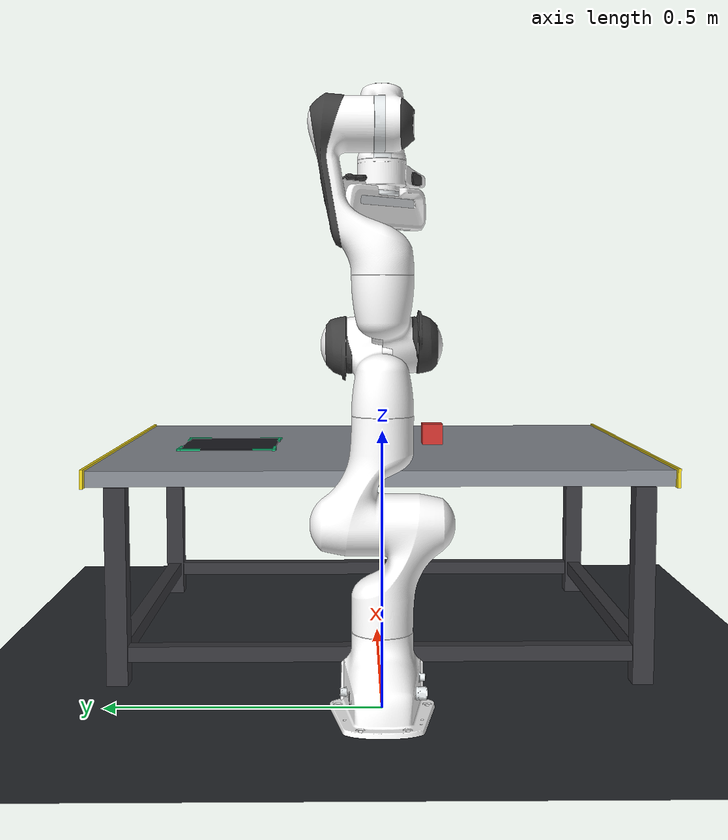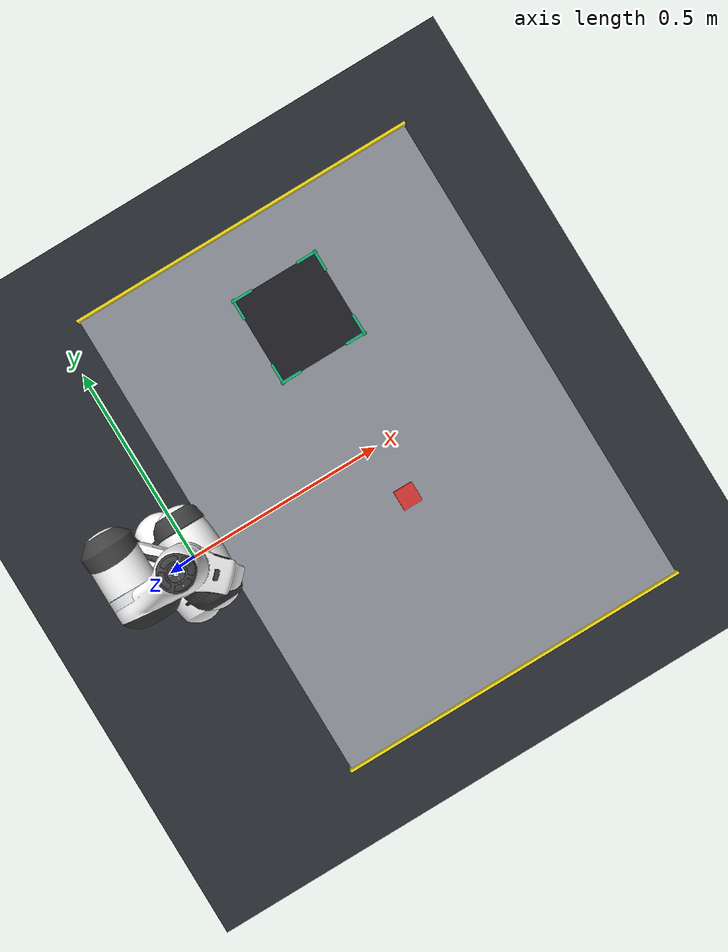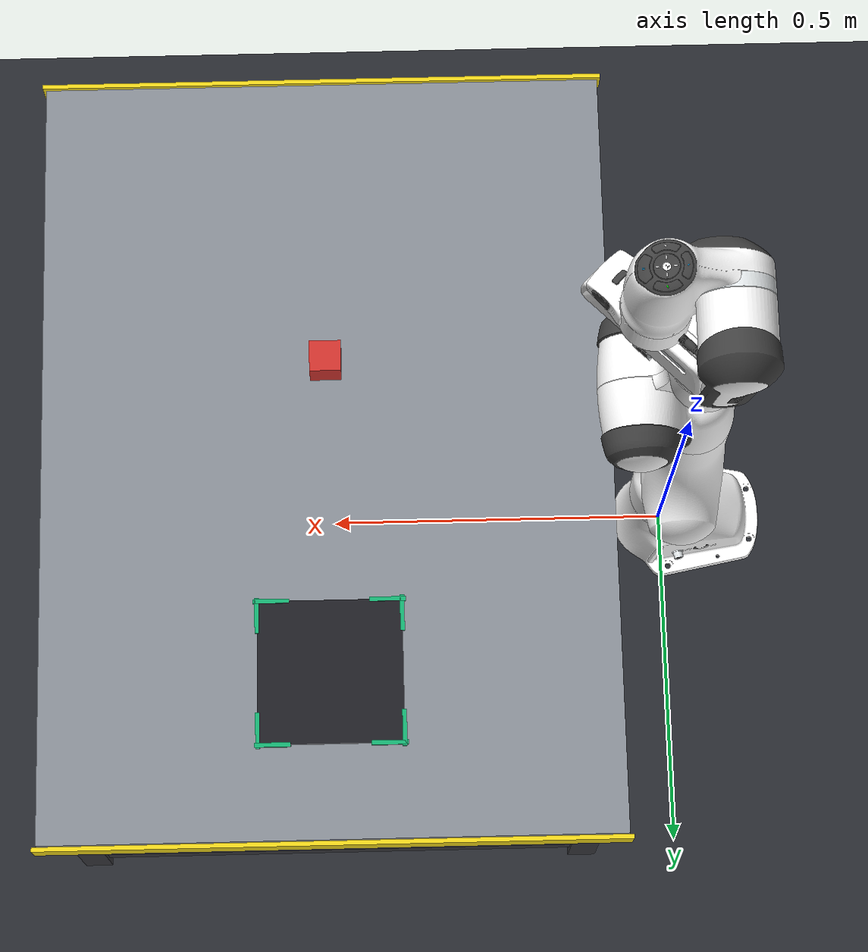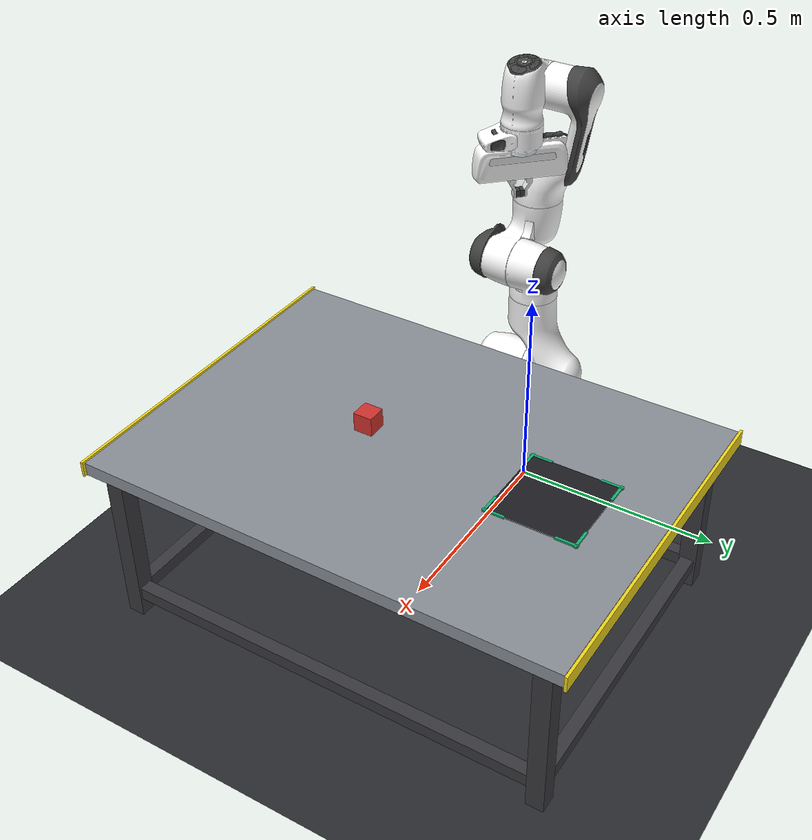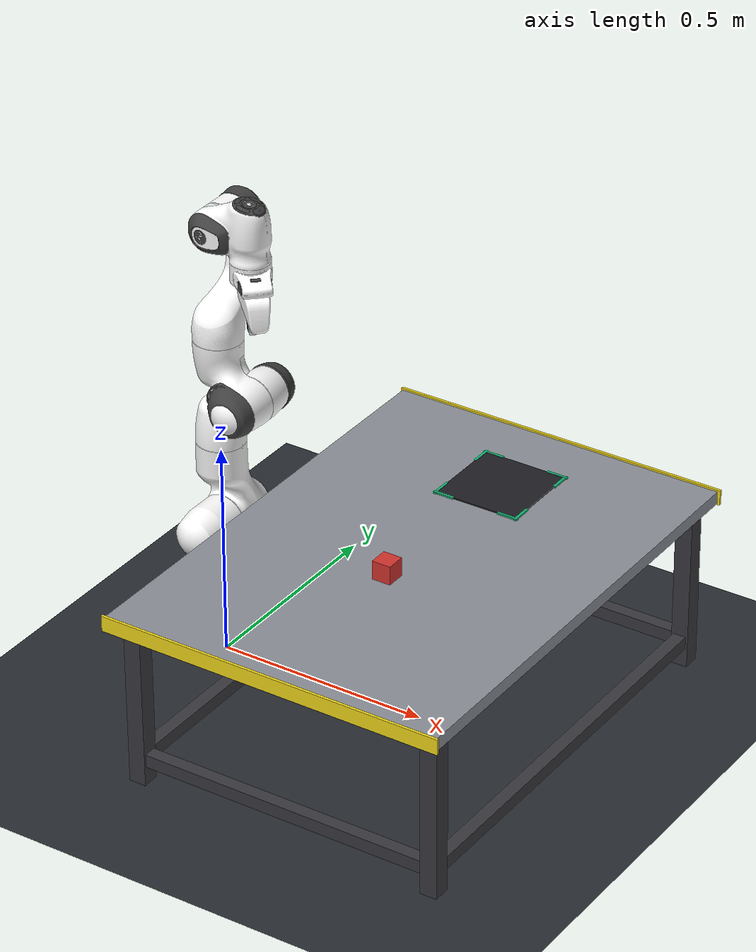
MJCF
<!--
  Grasp Integrity Predictor — Lab Workcell
  Official Franka Emika Panda (MuJoCo Menagerie).
  Module C demo / case study.
-->
<mujoco model="grasp_lab">
  <include file="panda.xml"/>

  <option timestep="0.002" gravity="0 0 -9.81"
          cone="elliptic" impratio="10"/>

  <statistic center="0.35 0 0.40" extent="1.2"/>

  <visual>
    <headlight diffuse="0.42 0.42 0.45" ambient="0.28 0.28 0.30" specular="0.08 0.08 0.08"/>
    <rgba haze="0.04 0.05 0.08 1"/>
    <quality shadowsize="4096" offsamples="8"/>
    <map znear="0.005" zfar="50" force="0.05"/>
    <global azimuth="150" elevation="-25"/>
  </visual>

  <asset>
    <texture name="skybox" type="skybox" builtin="gradient"
             rgb1="0.10 0.11 0.14" rgb2="0.04 0.05 0.07"
             width="512" height="3072"/>

    <material name="floor_mat" specular="0.05" shininess="0.05"
              reflectance="0.02" rgba="0.16 0.17 0.19 1"/>

    <texture name="alu_tex" type="2d" builtin="gradient"
             rgb1="0.58 0.60 0.63" rgb2="0.50 0.52 0.55"
             width="256" height="16"/>
    <material name="alu_mat" texture="alu_tex" texrepeat="1 8"
              specular="0.7" shininess="0.8" reflectance="0.12"/>

    <material name="steel_mat" specular="0.3" shininess="0.4"
              rgba="0.22 0.22 0.24 1"/>

    <material name="cube_red" specular="0.5" shininess="0.4"
              rgba="0.82 0.20 0.18 1"/>
    <material name="sphere_blue" specular="0.55" shininess="0.55"
              rgba="0.18 0.48 0.85 0"/>

    <material name="zone_mat" specular="0.08" shininess="0.1"
              rgba="0.12 0.12 0.14 1"/>
    <material name="zone_edge" specular="0.4" shininess="0.3"
              rgba="0.08 0.70 0.45 1"/>

    <material name="yellow_safety" specular="0.3" shininess="0.3"
              rgba="0.95 0.85 0.10 1"/>
  </asset>

  <worldbody>
    <geom name="floor" type="plane" size="4 4 0.05" material="floor_mat"
          contype="1" conaffinity="1"/>

    <light name="key_light" pos="0.8 -1.2 2.2" dir="-0.1 0.7 -1"
           diffuse="0.55 0.54 0.52" specular="0.18 0.18 0.18"
           castshadow="true" cutoff="55"/>
    <light name="fill_light" pos="-0.8 0.8 1.8" dir="0.5 -0.4 -1"
           diffuse="0.22 0.24 0.28" specular="0.04 0.04 0.04"
           castshadow="false" cutoff="55"/>
    <light name="rim_light" pos="0.0 1.6 1.2" dir="0 -1 0.1"
           diffuse="0.18 0.18 0.22" specular="0.0 0.0 0.0"
           castshadow="false"/>

    <!-- ══════ WORKCELL TABLE ══════ -->
    <body name="table" pos="0.5 0.0 0.0">
      <geom name="table_top" type="box" size="0.40 0.55 0.015"
            pos="0 0 0.40" material="alu_mat" mass="80"
            contype="1" conaffinity="1" friction="0.8 0.005 0.001"/>
      <geom type="box" size="0.02 0.02 0.19" pos="-0.36 -0.50 0.19" material="steel_mat"/>
      <geom type="box" size="0.02 0.02 0.19" pos=" 0.36 -0.50 0.19" material="steel_mat"/>
      <geom type="box" size="0.02 0.02 0.19" pos="-0.36  0.50 0.19" material="steel_mat"/>
      <geom type="box" size="0.02 0.02 0.19" pos=" 0.36  0.50 0.19" material="steel_mat"/>
      <geom type="box" size="0.36 0.015 0.015" pos="0 -0.50 0.06" material="steel_mat"/>
      <geom type="box" size="0.36 0.015 0.015" pos="0  0.50 0.06" material="steel_mat"/>
      <geom type="box" size="0.015 0.50 0.015" pos="-0.36 0 0.06" material="steel_mat"/>
      <geom type="box" size="0.015 0.50 0.015" pos=" 0.36 0 0.06" material="steel_mat"/>
      <geom name="alarm_strip_front" type="box" size="0.405 0.003 0.018"
            pos="0 -0.555 0.40" material="yellow_safety"
            contype="0" conaffinity="0"/>
      <geom name="alarm_strip_back" type="box" size="0.405 0.003 0.018"
            pos="0  0.555 0.40" material="yellow_safety"
            contype="0" conaffinity="0"/>
    </body>

    <!-- ══════ DROP ZONE ══════ -->
    <body name="drop_zone" pos="0.50 0.32 0.416">
      <geom name="zone_base" type="box" size="0.10 0.10 0.002"
            material="zone_mat" mass="0.5" contype="0" conaffinity="0"/>
      <geom type="box" size="0.025 0.003 0.003" pos="-0.08  0.10 0" material="zone_edge" contype="0" conaffinity="0"/>
      <geom type="box" size="0.003 0.025 0.003" pos="-0.10  0.08 0" material="zone_edge" contype="0" conaffinity="0"/>
      <geom type="box" size="0.025 0.003 0.003" pos=" 0.08  0.10 0" material="zone_edge" contype="0" conaffinity="0"/>
      <geom type="box" size="0.003 0.025 0.003" pos=" 0.10  0.08 0" material="zone_edge" contype="0" conaffinity="0"/>
      <geom type="box" size="0.025 0.003 0.003" pos="-0.08 -0.10 0" material="zone_edge" contype="0" conaffinity="0"/>
      <geom type="box" size="0.003 0.025 0.003" pos="-0.10 -0.08 0" material="zone_edge" contype="0" conaffinity="0"/>
      <geom type="box" size="0.025 0.003 0.003" pos=" 0.08 -0.10 0" material="zone_edge" contype="0" conaffinity="0"/>
      <geom type="box" size="0.003 0.025 0.003" pos=" 0.10 -0.08 0" material="zone_edge" contype="0" conaffinity="0"/>
    </body>

    <!-- ══════ GRASPABLE OBJECTS ══════ -->
    <body name="cube_red" pos="0.50 -0.12 0.44">
      <freejoint name="cube_red_free"/>
      <geom name="cube_red_geom" type="box" size="0.022 0.022 0.022"
            material="cube_red" mass="0.10"
            condim="4" friction="2.5 0.015 0.003"
            solref="0.008 1" solimp="0.95 0.99 0.001"
            contype="1" conaffinity="1"/>
    </body>

    <body name="sphere_blue" pos="0.50 0.05 0.437">
      <freejoint name="sphere_blue_free"/>
      <geom name="sphere_blue_geom" type="sphere" size="0.022"
            material="sphere_blue" mass="0.10"
            condim="1" friction="0.001 0.0001 0.0001"
            solref="0.008 1" solimp="0.95 0.99 0.001"
            contype="0" conaffinity="0"/>
    </body>
  </worldbody>

  <contact>
    <pair geom1="sphere_blue_geom" geom2="left_pad1"  friction="0 0 0 0 0"/>
    <pair geom1="sphere_blue_geom" geom2="left_pad2"  friction="0 0 0 0 0"/>
    <pair geom1="sphere_blue_geom" geom2="left_pad3"  friction="0 0 0 0 0"/>
    <pair geom1="sphere_blue_geom" geom2="left_pad4"  friction="0 0 0 0 0"/>
    <pair geom1="sphere_blue_geom" geom2="left_pad5"  friction="0 0 0 0 0"/>
    <pair geom1="sphere_blue_geom" geom2="right_pad1" friction="0 0 0 0 0"/>
    <pair geom1="sphere_blue_geom" geom2="right_pad2" friction="0 0 0 0 0"/>
    <pair geom1="sphere_blue_geom" geom2="right_pad3" friction="0 0 0 0 0"/>
    <pair geom1="sphere_blue_geom" geom2="right_pad4" friction="0 0 0 0 0"/>
    <pair geom1="sphere_blue_geom" geom2="right_pad5" friction="0 0 0 0 0"/>
  </contact>

  <sensor>
    <jointactuatorfrc name="torque_j1" joint="joint1"/>
    <jointactuatorfrc name="torque_j2" joint="joint2"/>
    <jointactuatorfrc name="torque_j3" joint="joint3"/>
    <jointactuatorfrc name="torque_j4" joint="joint4"/>
    <jointactuatorfrc name="torque_j5" joint="joint5"/>
    <jointactuatorfrc name="torque_j6" joint="joint6"/>
    <jointactuatorfrc name="torque_j7" joint="joint7"/>
    <framepos name="ee_pos" objtype="site" objname="end_effector"/>
    <jointactuatorfrc name="force_finger1" joint="finger_joint1"/>
    <jointactuatorfrc name="force_finger2" joint="finger_joint2"/>
  </sensor>

  <keyframe>
    <key name="lab_home"
         qpos="0 0 0 -1.57079 0 1.57079 -0.7853 0.04 0.04
               0.50 -0.12 0.44  1 0 0 0
               0.50  0.05 0.437 1 0 0 0"
         ctrl="0 0 0 -1.57079 0 1.57079 -0.7853 255"/>
  </keyframe>
</mujoco>

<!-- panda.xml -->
<mujoco model="panda">
  <compiler angle="radian" meshdir="assets" autolimits="true"/>

  <option integrator="implicitfast"/>

  <default>
    <default class="panda">
      <material specular="0.5" shininess="0.25"/>
      <joint armature="0.1" damping="1" axis="0 0 1" range="-2.8973 2.8973"/>
      <general dyntype="none" biastype="affine" ctrlrange="-2.8973 2.8973" forcerange="-87 87"/>
      <default class="finger">
        <joint axis="0 1 0" type="slide" range="0 0.04"/>
      </default>

      <default class="visual">
        <geom type="mesh" contype="0" conaffinity="0" group="2"/>
      </default>
      <default class="collision">
        <geom type="mesh" group="3"/>
        <default class="fingertip_pad_collision_1">
          <geom type="box" size="0.0085 0.004 0.0085" pos="0 0.0055 0.0445"/>
        </default>
        <default class="fingertip_pad_collision_2">
          <geom type="box" size="0.003 0.002 0.003" pos="0.0055 0.002 0.05"/>
        </default>
        <default class="fingertip_pad_collision_3">
          <geom type="box" size="0.003 0.002 0.003" pos="-0.0055 0.002 0.05"/>
        </default>
        <default class="fingertip_pad_collision_4">
          <geom type="box" size="0.003 0.002 0.0035" pos="0.0055 0.002 0.0395"/>
        </default>
        <default class="fingertip_pad_collision_5">
          <geom type="box" size="0.003 0.002 0.0035" pos="-0.0055 0.002 0.0395"/>
        </default>
      </default>
    </default>
  </default>

  <asset>
    <material class="panda" name="white" rgba="1 1 1 1"/>
    <material class="panda" name="off_white" rgba="0.901961 0.921569 0.929412 1"/>
    <material class="panda" name="black" rgba="0.25 0.25 0.25 1"/>
    <material class="panda" name="green" rgba="0 1 0 1"/>
    <material class="panda" name="light_blue" rgba="0.039216 0.541176 0.780392 1"/>

    <!-- Collision meshes -->
    <mesh name="link0_c" file="link0.stl"/>
    <mesh name="link1_c" file="link1.stl"/>
    <mesh name="link2_c" file="link2.stl"/>
    <mesh name="link3_c" file="link3.stl"/>
    <mesh name="link4_c" file="link4.stl"/>
    <mesh name="link5_c0" file="link5_collision_0.obj"/>
    <mesh name="link5_c1" file="link5_collision_1.obj"/>
    <mesh name="link5_c2" file="link5_collision_2.obj"/>
    <mesh name="link6_c" file="link6.stl"/>
    <mesh name="link7_c" file="link7.stl"/>
    <mesh name="hand_c" file="hand.stl"/>

    <!-- Visual meshes -->
    <mesh file="link0_0.obj"/>
    <mesh file="link0_1.obj"/>
    <mesh file="link0_2.obj"/>
    <mesh file="link0_3.obj"/>
    <mesh file="link0_4.obj"/>
    <mesh file="link0_5.obj"/>
    <mesh file="link0_7.obj"/>
    <mesh file="link0_8.obj"/>
    <mesh file="link0_9.obj"/>
    <mesh file="link0_10.obj"/>
    <mesh file="link0_11.obj"/>
    <mesh file="link1.obj"/>
    <mesh file="link2.obj"/>
    <mesh file="link3_0.obj"/>
    <mesh file="link3_1.obj"/>
    <mesh file="link3_2.obj"/>
    <mesh file="link3_3.obj"/>
    <mesh file="link4_0.obj"/>
    <mesh file="link4_1.obj"/>
    <mesh file="link4_2.obj"/>
    <mesh file="link4_3.obj"/>
    <mesh file="link5_0.obj"/>
    <mesh file="link5_1.obj"/>
    <mesh file="link5_2.obj"/>
    <mesh file="link6_0.obj"/>
    <mesh file="link6_1.obj"/>
    <mesh file="link6_2.obj"/>
    <mesh file="link6_3.obj"/>
    <mesh file="link6_4.obj"/>
    <mesh file="link6_5.obj"/>
    <mesh file="link6_6.obj"/>
    <mesh file="link6_7.obj"/>
    <mesh file="link6_8.obj"/>
    <mesh file="link6_9.obj"/>
    <mesh file="link6_10.obj"/>
    <mesh file="link6_11.obj"/>
    <mesh file="link6_12.obj"/>
    <mesh file="link6_13.obj"/>
    <mesh file="link6_14.obj"/>
    <mesh file="link6_15.obj"/>
    <mesh file="link6_16.obj"/>
    <mesh file="link7_0.obj"/>
    <mesh file="link7_1.obj"/>
    <mesh file="link7_2.obj"/>
    <mesh file="link7_3.obj"/>
    <mesh file="link7_4.obj"/>
    <mesh file="link7_5.obj"/>
    <mesh file="link7_6.obj"/>
    <mesh file="link7_7.obj"/>
    <mesh file="hand_0.obj"/>
    <mesh file="hand_1.obj"/>
    <mesh file="hand_2.obj"/>
    <mesh file="hand_3.obj"/>
    <mesh file="hand_4.obj"/>
    <mesh file="finger_0.obj"/>
    <mesh file="finger_1.obj"/>
  </asset>

  <worldbody>
    <light name="top" pos="0 0 2" mode="trackcom"/>
    <body name="link0" childclass="panda">
      <inertial mass="0.629769" pos="-0.041018 -0.00014 0.049974"
        fullinertia="0.00315 0.00388 0.004285 8.2904e-7 0.00015 8.2299e-6"/>
      <geom mesh="link0_0" material="off_white" class="visual"/>
      <geom mesh="link0_1" material="black" class="visual"/>
      <geom mesh="link0_2" material="off_white" class="visual"/>
      <geom mesh="link0_3" material="black" class="visual"/>
      <geom mesh="link0_4" material="off_white" class="visual"/>
      <geom mesh="link0_5" material="black" class="visual"/>
      <geom mesh="link0_7" material="white" class="visual"/>
      <geom mesh="link0_8" material="white" class="visual"/>
      <geom mesh="link0_9" material="black" class="visual"/>
      <geom mesh="link0_10" material="off_white" class="visual"/>
      <geom mesh="link0_11" material="white" class="visual"/>
      <geom mesh="link0_c" class="collision"/>
      <body name="link1" pos="0 0 0.333">
        <inertial mass="4.970684" pos="0.003875 0.002081 -0.04762"
          fullinertia="0.70337 0.70661 0.0091170 -0.00013900 0.0067720 0.019169"/>
        <joint name="joint1"/>
        <geom material="white" mesh="link1" class="visual"/>
        <geom mesh="link1_c" class="collision"/>
        <body name="link2" quat="1 -1 0 0">
          <inertial mass="0.646926" pos="-0.003141 -0.02872 0.003495"
            fullinertia="0.0079620 2.8110e-2 2.5995e-2 -3.925e-3 1.0254e-2 7.04e-4"/>
          <joint name="joint2" range="-1.7628 1.7628"/>
          <geom material="white" mesh="link2" class="visual"/>
          <geom mesh="link2_c" class="collision"/>
          <body name="link3" pos="0 -0.316 0" quat="1 1 0 0">
            <joint name="joint3"/>
            <inertial mass="3.228604" pos="2.7518e-2 3.9252e-2 -6.6502e-2"
              fullinertia="3.7242e-2 3.6155e-2 1.083e-2 -4.761e-3 -1.1396e-2 -1.2805e-2"/>
            <geom mesh="link3_0" material="white" class="visual"/>
            <geom mesh="link3_1" material="white" class="visual"/>
            <geom mesh="link3_2" material="white" class="visual"/>
            <geom mesh="link3_3" material="black" class="visual"/>
            <geom mesh="link3_c" class="collision"/>
            <body name="link4" pos="0.0825 0 0" quat="1 1 0 0">
              <inertial mass="3.587895" pos="-5.317e-2 1.04419e-1 2.7454e-2"
                fullinertia="2.5853e-2 1.9552e-2 2.8323e-2 7.796e-3 -1.332e-3 8.641e-3"/>
              <joint name="joint4" range="-3.0718 -0.0698"/>
              <geom mesh="link4_0" material="white" class="visual"/>
              <geom mesh="link4_1" material="white" class="visual"/>
              <geom mesh="link4_2" material="black" class="visual"/>
              <geom mesh="link4_3" material="white" class="visual"/>
              <geom mesh="link4_c" class="collision"/>
              <body name="link5" pos="-0.0825 0.384 0" quat="1 -1 0 0">
                <inertial mass="1.225946" pos="-1.1953e-2 4.1065e-2 -3.8437e-2"
                  fullinertia="3.5549e-2 2.9474e-2 8.627e-3 -2.117e-3 -4.037e-3 2.29e-4"/>
                <joint name="joint5"/>
                <geom mesh="link5_0" material="black" class="visual"/>
                <geom mesh="link5_1" material="white" class="visual"/>
                <geom mesh="link5_2" material="white" class="visual"/>
                <geom mesh="link5_c0" class="collision"/>
                <geom mesh="link5_c1" class="collision"/>
                <geom mesh="link5_c2" class="collision"/>
                <body name="link6" quat="1 1 0 0">
                  <inertial mass="1.666555" pos="6.0149e-2 -1.4117e-2 -1.0517e-2"
                    fullinertia="1.964e-3 4.354e-3 5.433e-3 1.09e-4 -1.158e-3 3.41e-4"/>
                  <joint name="joint6" range="-0.0175 3.7525"/>
                  <geom mesh="link6_0" material="off_white" class="visual"/>
                  <geom mesh="link6_1" material="white" class="visual"/>
                  <geom mesh="link6_2" material="black" class="visual"/>
                  <geom mesh="link6_3" material="white" class="visual"/>
                  <geom mesh="link6_4" material="white" class="visual"/>
                  <geom mesh="link6_5" material="white" class="visual"/>
                  <geom mesh="link6_6" material="white" class="visual"/>
                  <geom mesh="link6_7" material="light_blue" class="visual"/>
                  <geom mesh="link6_8" material="light_blue" class="visual"/>
                  <geom mesh="link6_9" material="black" class="visual"/>
                  <geom mesh="link6_10" material="black" class="visual"/>
                  <geom mesh="link6_11" material="white" class="visual"/>
                  <geom mesh="link6_12" material="green" class="visual"/>
                  <geom mesh="link6_13" material="white" class="visual"/>
                  <geom mesh="link6_14" material="black" class="visual"/>
                  <geom mesh="link6_15" material="black" class="visual"/>
                  <geom mesh="link6_16" material="white" class="visual"/>
                  <geom mesh="link6_c" class="collision"/>
                  <body name="link7" pos="0.088 0 0" quat="1 1 0 0">
                    <inertial mass="7.35522e-01" pos="1.0517e-2 -4.252e-3 6.1597e-2"
                      fullinertia="1.2516e-2 1.0027e-2 4.815e-3 -4.28e-4 -1.196e-3 -7.41e-4"/>
                    <joint name="joint7"/>
                    <geom mesh="link7_0" material="white" class="visual"/>
                    <geom mesh="link7_1" material="black" class="visual"/>
                    <geom mesh="link7_2" material="black" class="visual"/>
                    <geom mesh="link7_3" material="black" class="visual"/>
                    <geom mesh="link7_4" material="black" class="visual"/>
                    <geom mesh="link7_5" material="black" class="visual"/>
                    <geom mesh="link7_6" material="black" class="visual"/>
                    <geom mesh="link7_7" material="white" class="visual"/>
                    <geom mesh="link7_c" class="collision"/>
                    <body name="hand" pos="0 0 0.107" quat="0.9238795 0 0 -0.3826834">
                      <inertial mass="0.73" pos="-0.01 0 0.03" diaginertia="0.001 0.0025 0.0017"/>
                      <site name="end_effector" pos="0 0 0.103" size="0.004" rgba="1 0 0 0.25"/>
                      <geom mesh="hand_0" material="off_white" class="visual"/>
                      <geom mesh="hand_1" material="black" class="visual"/>
                      <geom mesh="hand_2" material="black" class="visual"/>
                      <geom mesh="hand_3" material="white" class="visual"/>
                      <geom mesh="hand_4" material="off_white" class="visual"/>
                      <geom mesh="hand_c" class="collision"/>
                      <body name="left_finger" pos="0 0 0.0584">
                        <inertial mass="0.015" pos="0 0 0" diaginertia="2.375e-6 2.375e-6 7.5e-7"/>
                        <joint name="finger_joint1" class="finger"/>
                        <geom mesh="finger_0" material="off_white" class="visual"/>
                        <geom mesh="finger_1" material="black" class="visual"/>
                        <geom mesh="finger_0" class="collision"/>
                        <geom name="left_pad1" class="fingertip_pad_collision_1"/>
                        <geom name="left_pad2" class="fingertip_pad_collision_2"/>
                        <geom name="left_pad3" class="fingertip_pad_collision_3"/>
                        <geom name="left_pad4" class="fingertip_pad_collision_4"/>
                        <geom name="left_pad5" class="fingertip_pad_collision_5"/>
                      </body>
                      <body name="right_finger" pos="0 0 0.0584" quat="0 0 0 1">
                        <inertial mass="0.015" pos="0 0 0" diaginertia="2.375e-6 2.375e-6 7.5e-7"/>
                        <joint name="finger_joint2" class="finger"/>
                        <geom mesh="finger_0" material="off_white" class="visual"/>
                        <geom mesh="finger_1" material="black" class="visual"/>
                        <geom mesh="finger_0" class="collision"/>
                        <geom name="right_pad1" class="fingertip_pad_collision_1"/>
                        <geom name="right_pad2" class="fingertip_pad_collision_2"/>
                        <geom name="right_pad3" class="fingertip_pad_collision_3"/>
                        <geom name="right_pad4" class="fingertip_pad_collision_4"/>
                        <geom name="right_pad5" class="fingertip_pad_collision_5"/>
                      </body>
                    </body>
                  </body>
                </body>
              </body>
            </body>
          </body>
        </body>
      </body>
    </body>
  </worldbody>

  <tendon>
    <fixed name="split">
      <joint joint="finger_joint1" coef="0.5"/>
      <joint joint="finger_joint2" coef="0.5"/>
    </fixed>
  </tendon>

  <equality>
    <joint joint1="finger_joint1" joint2="finger_joint2" solimp="0.95 0.99 0.001" solref="0.005 1"/>
  </equality>

  <actuator>
    <general class="panda" name="actuator1" joint="joint1" gainprm="4500" biasprm="0 -4500 -450"/>
    <general class="panda" name="actuator2" joint="joint2" gainprm="4500" biasprm="0 -4500 -450"
      ctrlrange="-1.7628 1.7628"/>
    <general class="panda" name="actuator3" joint="joint3" gainprm="3500" biasprm="0 -3500 -350"/>
    <general class="panda" name="actuator4" joint="joint4" gainprm="3500" biasprm="0 -3500 -350"
      ctrlrange="-3.0718 -0.0698"/>
    <general class="panda" name="actuator5" joint="joint5" gainprm="2000" biasprm="0 -2000 -200" forcerange="-12 12"/>
    <general class="panda" name="actuator6" joint="joint6" gainprm="2000" biasprm="0 -2000 -200" forcerange="-12 12"
      ctrlrange="-0.0175 3.7525"/>
    <general class="panda" name="actuator7" joint="joint7" gainprm="2000" biasprm="0 -2000 -200" forcerange="-12 12"/>
    <!-- Remap original ctrlrange (0, 0.04) to (0, 255): 0.04 * 100 / 255 = 0.01568627451 -->
    <general class="panda" name="actuator8" tendon="split" forcerange="-100 100" ctrlrange="0 255"
      gainprm="0.01568627451 0 0" biasprm="0 -100 -10"/>
  </actuator>

  <keyframe>
    <key name="home" qpos="0 0 0 -1.57079 0 1.57079 -0.7853 0.04 0.04" ctrl="0 0 0 -1.57079 0 1.57079 -0.7853 255"/>
  </keyframe>

  <contact>
    <exclude body1="link0" body2="link1"/>
  </contact>
</mujoco>
